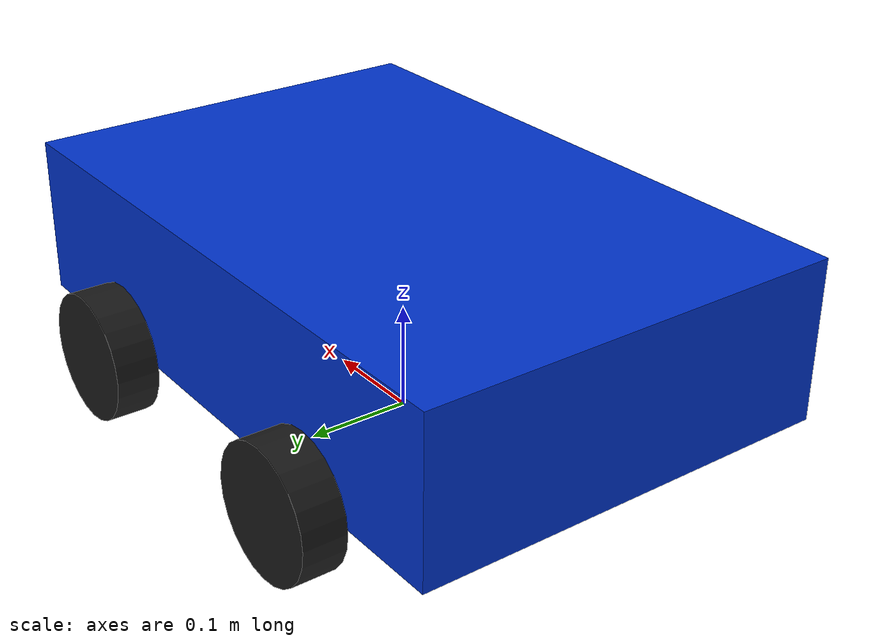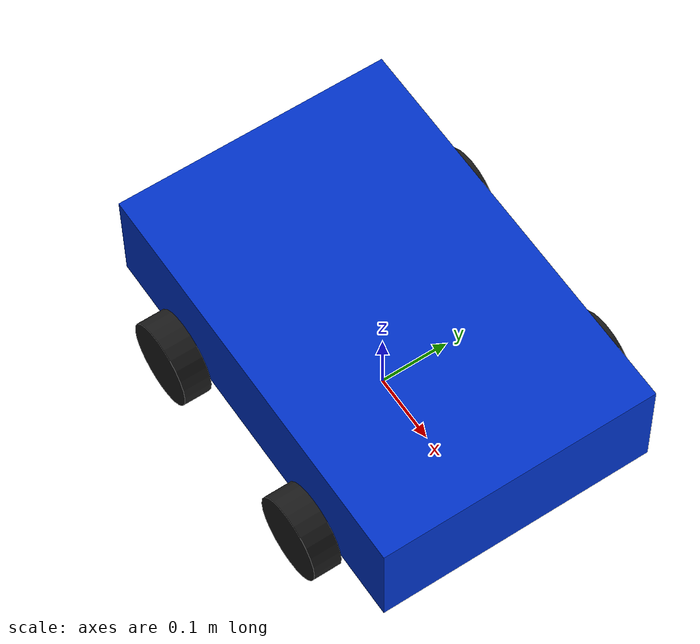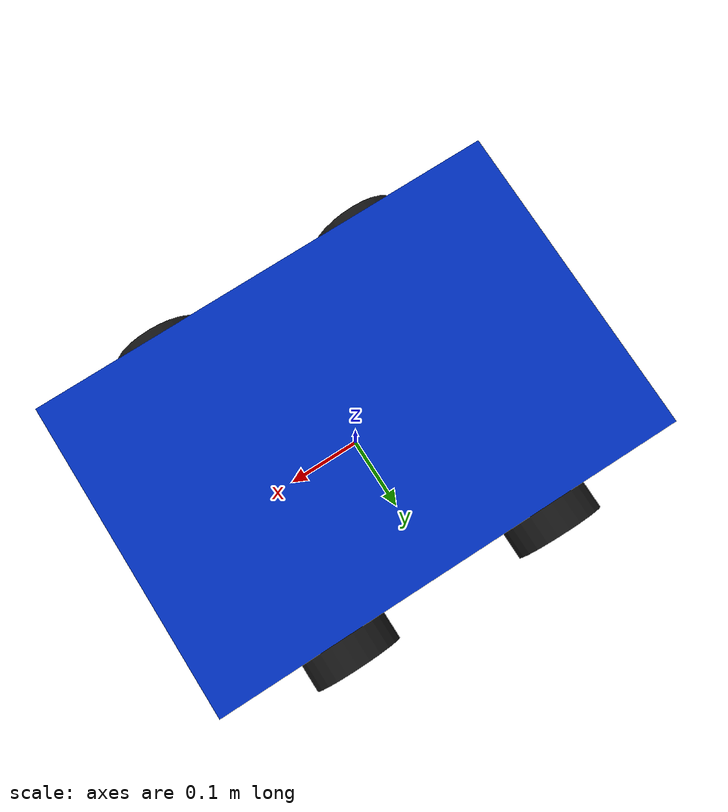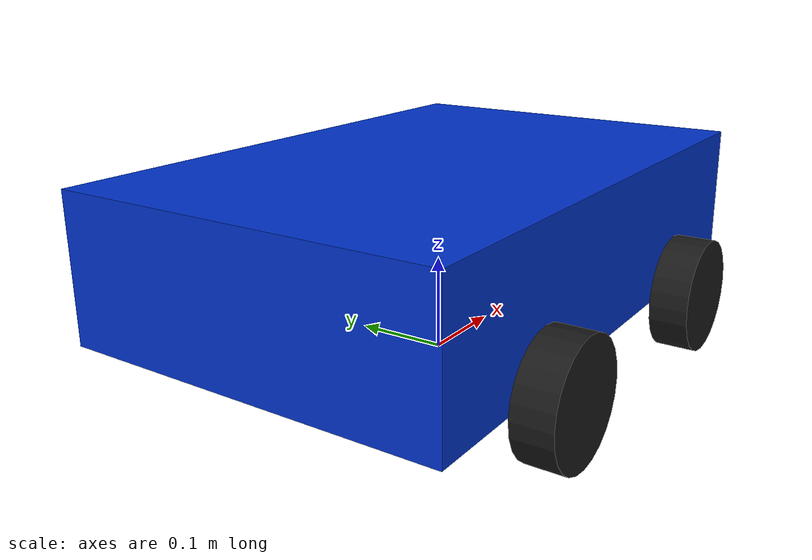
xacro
<?xml version="1.0"?>
<robot xmlns:xacro="http://www.ros.org/wiki/xacro" name="four_wheel_bot">

  <!-- Parameters -->
  <xacro:property name="wheel_radius" value="0.06"/>
  <xacro:property name="wheel_length" value="0.04"/>
  <xacro:property name="wheel_sep_x" value="0.3"/>  <!-- distance between front and rear wheel centers -->
  <xacro:property name="wheel_sep_y" value="0.445"/> <!-- distance between left and right wheel centers -->
  <xacro:property name="base_height" value="0.15"/>
  <xacro:property name="base_length" value="0.6"/>
  <xacro:property name="base_width"  value="0.4"/>
  <xacro:property name="base_mass"   value="10.0"/>

  <!-- Compute inertia for a box -->
  <xacro:property name="ixx" value="${(1/12.0)*base_mass*(base_width*base_width + base_height*base_height)}"/>
  <xacro:property name="iyy" value="${(1/12.0)*base_mass*(base_length*base_length + base_height*base_height)}"/>
  <xacro:property name="izz" value="${(1/12.0)*base_mass*(base_length*base_length + base_width*base_width)}"/>

  <!-- Materials -->
  <material name="black">
    <color rgba="0.1 0.1 0.1 1"/>
  </material>

  <material name="blue">
    <color rgba="0.0 0.2 0.8 1"/>
  </material>

  <!-- Base link -->
  <link name="base_link">
    <inertial>
      <origin xyz="0 0 ${wheel_radius + base_height/2.0}" rpy="0 0 0"/>
      <mass value="${base_mass}"/>
      <inertia ixx="${ixx}" ixy="0.0" ixz="0.0" iyy="${iyy}" iyz="0.0" izz="${izz}"/>
    </inertial>
    <visual>
      <geometry>
        <box size="${base_length} ${base_width} ${base_height}"/>
      </geometry>
      <origin xyz="0 0 ${wheel_radius + base_height/2.0}" rpy="0 0 0"/>
      <material name="blue"/>
    </visual>
    <collision>
      <geometry>
        <box size="${base_length} ${base_width} ${base_height}"/>
      </geometry>
      <origin xyz="0 0 ${wheel_radius + base_height/2.0}" rpy="0 0 0"/>
    </collision>
  </link>

  <!-- Macro for wheel -->
  <xacro:macro name="wheel" params="prefix px py name">
    <link name="${name}_link">
      <inertial>
        <origin xyz="0 0 0" rpy="0 0 0"/>
        <mass value="0.5"/>
        <inertia ixx="0.00045" ixy="0.0" ixz="0.0" iyy="0.00045" iyz="0.0" izz="0.0009"/>
      </inertial>
      <visual>
        <origin xyz="0 0 0" rpy="1.5708 0 0"/>
        <geometry>
          <cylinder length="${wheel_length}" radius="${wheel_radius}"/>
        </geometry>
        <material name="black"/>
      </visual>
      <collision>
        <origin xyz="0 0 0" rpy="1.5708 0 0"/>
        <geometry>
          <cylinder length="${wheel_length}" radius="${wheel_radius}"/>
        </geometry>
      </collision>
    </link>

    <joint name="${prefix}_joint" type="continuous">
      <parent link="base_link"/>
      <child link="${name}_link"/>
      <origin xyz="${px} ${py} ${wheel_radius}" rpy="0 0 0"/>
      <axis xyz="0 1 0"/>
      <dynamics damping="0.1" friction="0.1"/>
      <limit effort="10" velocity="10"/>
    </joint>
  </xacro:macro>

 <!-- Gazebo differential drive controller -->
<gazebo>
  <plugin name="differential_drive_controller" filename="libgazebo_ros_diff_drive.so">

    <!-- Update rate -->
    <update_rate>50</update_rate>

    <!-- Wheels - map to your joint names -->
    <left_joint>front_left_joint</left_joint>
    <left_joint>rear_left_joint</left_joint>
    <right_joint>front_right_joint</right_joint>
    <right_joint>rear_right_joint</right_joint>

    <!-- Kinematics -->
    <wheel_separation>0.445</wheel_separation>
    <wheel_diameter>0.12</wheel_diameter>

    <!-- Limits -->
    <max_wheel_torque>20</max_wheel_torque>
    <max_wheel_acceleration>1.0</max_wheel_acceleration>

    <!-- Output settings -->
    <publish_odom>false</publish_odom>
    <publish_odom_tf>false</publish_odom_tf>
    <publish_wheel_tf>true</publish_wheel_tf>
    <publish_wheel_joint_state>true</publish_wheel_joint_state>

    <!-- Topic names -->
    <command_topic>cmd_vel</command_topic>
    <odometry_topic>gazebo_odom</odometry_topic>
    <odometry_frame>odom</odometry_frame>
    <robot_base_frame>base_link</robot_base_frame>

  </plugin>
</gazebo>

<!-- Joint state publisher plugin -->
<gazebo>
  <plugin name="gazebo_ros_joint_state_publisher" filename="libgazebo_ros_joint_state_publisher.so">
    <update_rate>50</update_rate>
    <joint_name>front_left_joint</joint_name>
    <joint_name>front_right_joint</joint_name>
    <joint_name>rear_left_joint</joint_name>
    <joint_name>rear_right_joint</joint_name>
  </plugin>
</gazebo>

  <!-- Four wheels with corrected symmetry -->
  <xacro:wheel prefix="front_left"  px="${wheel_sep_x/2.0}"  py="${wheel_sep_y/2.0}"  name="wheel_fl"/>
  <xacro:wheel prefix="front_right" px="${wheel_sep_x/2.0}"  py="${-wheel_sep_y/2.0}" name="wheel_fr"/>
  <xacro:wheel prefix="rear_left"   px="${-wheel_sep_x/2.0}" py="${wheel_sep_y/2.0}"  name="wheel_rl"/>
  <xacro:wheel prefix="rear_right"  px="${-wheel_sep_x/2.0}" py="${-wheel_sep_y/2.0}" name="wheel_rr"/>

</robot>
